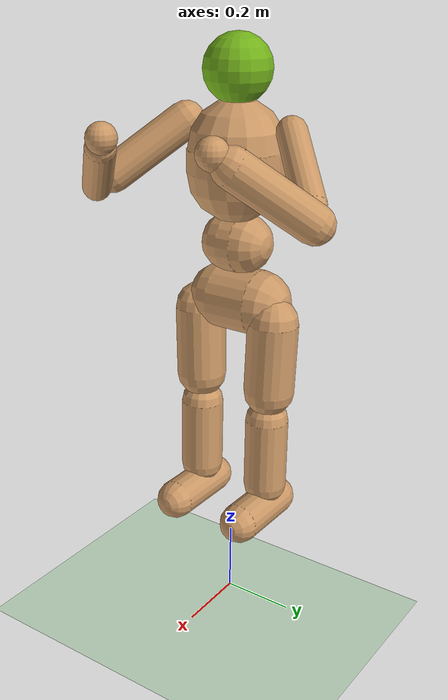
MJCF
<mujoco model="humanoid">
  <compiler angle="radian"/>

  <option timestep="0.003" integrator="RK4" solver="PGS" iterations="50"/>

  <size nkey="5" nuser_geom="1"/>

  <visual>
    <global offwidth="480"/>
    <map fogend="5"/>
  </visual>

  <default>
    <joint limited="true" armature="1" damping="1"/>
    <geom condim="1" margin="0.001" material="geom" rgba="0.8 0.6 0.4 1"/>
    <general ctrllimited="true" ctrlrange="-0.4 0.4"/>
  </default>

  <asset>
    <texture type="skybox" colorspace="auto" builtin="gradient" rgb1="0.4 0.5 0.6" rgb2="0 0 0" width="100" height="600"/>
    <texture type="cube" colorspace="auto" name="texgeom" builtin="flat" mark="cross" rgb1="0.8 0.6 0.4" rgb2="0.8 0.6 0.4" markrgb="1 1 1" width="127" height="762"/>
    <texture type="2d" colorspace="auto" name="texplane" builtin="checker" rgb1="0 0 0" rgb2="0.8 0.8 0.8" width="100" height="100"/>
    <material name="MatPlane" texture="texplane" texrepeat="60 60" specular="1" shininess="1" reflectance="0.5"/>
    <material name="geom" texture="texgeom" texuniform="true"/>
  </asset>

  <worldbody>
    <geom name="floor" size="20 20 0.125" type="plane" condim="3" friction="1 0.1 0.1" material="MatPlane" rgba="0.8 0.9 0.8 1"/>
    <light pos="0 0 1.3" dir="0 0 -1" type="directional" cutoff="100" exponent="1" diffuse="1 1 1" specular="0.1 0.1 0.1"/>
    <body name="torso" pos="0 0 1.35">
      <joint name="root" type="free" armature="0" damping="0"/>
      <geom name="torso1" type="capsule" size="0.13 0.03" pos="0 0 -0.04" density="900"/>
      <geom name="head" size="0.09" pos="0 0 0.19" user="258" rgba="0.45 0.7 0.1 1.0"/>

      <camera name="track" pos="0 -4 0" quat="0.707107 0.707107 0 0" mode="trackcom"/>
      <body name="lwaist" pos="-0.01 0 -0.26" quat="0.999998 0 -0.002 0">
        <joint name="abdomen_z" pos="0 0 0.065" axis="0 0 1" stiffness="20" range="-0.785398 0.785398" armature="0.02" damping="5"/>
        <joint name="abdomen_y" pos="0 0 0.065" axis="0 1 0" stiffness="12" range="-1.309 0.523599" armature="0.02" damping="65"/>
        <geom name="lwaist" size="0.08 0.02" quat="0.707107 0.707107 0 0" type="capsule"/>
        <body name="pelvis" pos="0 0 -0.165" quat="0.999998 0 -0.002 0">
          <joint name="abdomen_x" pos="0 0 0.1" axis="1 0 0" stiffness="10" range="-0.610865 0.610865" armature="0.02" damping="25"/>
          <geom name="butt" size="0.09 0.06" pos="-0.02 0 0" quat="0.707107 0.707107 0 0" type="capsule"/>
          <body name="right_thigh" pos="0 -0.12 -0.04">
            <joint name="right_hip_x" pos="0 0 0" axis="1 0 0" stiffness="10" range="-0.436332 0.0872665" armature="0.01" damping="5"/>
            <joint name="right_hip_z" pos="0 0 0" axis="0 0 1" stiffness="10" range="-1.0472 0.610865" armature="0.01" damping="5"/>
            <joint name="right_hip_y" pos="0 0 0" axis="0 1 0" stiffness="20" range="-1.91986 0.349066" armature="0.008" damping="5"/>
            <geom name="right_thigh1" size="0.07 0.1" pos="0 0.004 -0.1" quat="0.999892 0.0147011 0 0" type="capsule" density="1200"/>
            <body name="right_shin" pos="0 0.01 -0.31">
              <joint name="right_knee" pos="0 0 0.02" axis="0 -1 0" stiffness="4" range="-2.79253 -0.0349066" armature="0.006"/>
              <geom name="right_shin1" size="0.06 0.1" pos="0 0 -0.08" type="capsule"/>
              <body name="right_foot" pos="0 0 -0.25">
                <geom name="right_foot" type="capsule" size="0.055 0.1" fromto="-0.06 0 0 0.13 0 0" friction="1.8 0.2 0.1" />
              </body>
            </body>
          </body>
          <body name="left_thigh" pos="0 0.12 -0.04">
            <joint name="left_hip_x" pos="0 0 0" axis="-1 0 0" stiffness="10" range="-0.436332 0.0872665" armature="0.01" damping="5"/>
            <joint name="left_hip_z" pos="0 0 0" axis="0 0 -1" stiffness="10" range="-1.0472 0.610865" armature="0.01" damping="5"/>
            <joint name="left_hip_y" pos="0 0 0" axis="0 1 0" stiffness="20" range="-1.91986 0.349066" armature="0.01" damping="5"/>
            <geom name="left_thigh1" size="0.07 0.1" pos="0 -0.004 -0.1" quat="0.999892 -0.0147011 0 0" type="capsule" density="1200"/>
            <body name="left_shin" pos="0 -0.01 -0.31">
              <joint name="left_knee" pos="0 0 0.02" axis="0 -1 0" stiffness="4" range="-2.79253 -0.0349066" armature="0.006"/>
              <geom name="left_shin1" size="0.06 0.1" pos="0 0 -0.08" type="capsule"/>
              <body name="left_foot" pos="0 0 -0.25">
                <geom name="left_foot" type="capsule" size="0.055 0.1" fromto="-0.06 0 0 0.13 0 0" friction="1.8 0.2 0.1"/>
              </body>
            </body>
          </body>
        </body>
      </body>
      <body name="right_upper_arm" pos="0 -0.16 0.05">
        <joint name="right_shoulder1" pos="0 0 0" axis="0.816497 0.408248 0.408248" stiffness="2" range="-1.48353 1.0472" armature="0.0068"/>
        <joint name="right_shoulder2" pos="0 0 0" axis="0 -0.707107 0.707107" stiffness="2" range="-1.48353 1.0472" armature="0.0051"/>
        <geom name="right_uarm1" size="0.05 0.12" pos="0.07 -0.07 -0.07" quat="0.888074 -0.325058 -0.325058 0" type="capsule"/>
        <body name="right_lower_arm" pos="0.17 -0.17 -0.17">
          <joint name="right_elbow" pos="0 0 0" axis="0 -0.707107 0.707107" range="-1.5708 0.872665" armature="0.0028"/>
          <geom name="right_larm" size="0.04 0.12" pos="0.07 0.07 0.07" quat="0.459701 0.627963 -0.627963 0" type="capsule"/>
          <body name="right_h" pos="0.17 0.17 0.17">
            <geom name="right_hand" size="0.04" />
          </body>
        </body>
      </body>
      <body name="left_upper_arm" pos="0 0.16 0.05">
        <joint name="left_shoulder1" pos="0 0 0" axis="0.816497 -0.408248 0.408248" stiffness="2" range="-1.0472 1.48353" armature="0.0068"/>
        <joint name="left_shoulder2" pos="0 0 0" axis="0 0.707107 0.707107" stiffness="2" range="-1.0472 1.48353" armature="0.0051"/>
        <geom name="left_uarm1" size="0.04 0.12" pos="0.07 0.07 -0.07" quat="0.888074 0.325058 -0.325058 0" type="capsule"/>
        <body name="left_lower_arm" pos="0.17 0.17 -0.17">
          <joint name="left_elbow" pos="0 0 0" axis="0 -0.707107 -0.707107" range="-1.5708 0.872665" armature="0.0028"/>
          <geom name="left_larm" size="0.05 0.12" pos="0.07 -0.07 0.07" quat="0.459701 -0.627963 -0.627963 0" type="capsule"/>
          <body name="left_h" pos="0.17 -0.17 0.17">
            <geom name="left_hand" size="0.04" />
          </body>
        </body>
      </body>
    </body>
  </worldbody>

  <tendon>
    <fixed name="left_hipknee">
      <joint joint="left_hip_y" coef="-1"/>
      <joint joint="left_knee" coef="1"/>
    </fixed>
    <fixed name="right_hipknee">
      <joint joint="right_hip_y" coef="-1"/>
      <joint joint="right_knee" coef="1"/>
    </fixed>
  </tendon>

  <actuator>
    <general name="abdomen_y" joint="abdomen_y" gear="80 0 0 0 0 0"/>
    <general name="abdomen_z" joint="abdomen_z" gear="50 0 0 0 0 0"/>
    <general name="abdomen_x" joint="abdomen_x" gear="80 0 0 0 0 0"/>
    <general name="right_hip_x" joint="right_hip_x" gear="100 0 0 0 0 0"/>
    <general name="right_hip_z" joint="right_hip_z" gear="100 0 0 0 0 0"/>
    <general name="right_hip_y" joint="right_hip_y" gear="150 0 0 0 0 0"/>
    <general name="right_knee" joint="right_knee" gear="100 0 0 0 0 0"/>
    <general name="left_hip_x" joint="left_hip_x" gear="100 0 0 0 0 0"/>
    <general name="left_hip_z" joint="left_hip_z" gear="100 0 0 0 0 0"/>
    <general name="left_hip_y" joint="left_hip_y" gear="150 0 0 0 0 0"/>
    <general name="left_knee" joint="left_knee" gear="100 0 0 0 0 0"/>
    <general name="right_shoulder1" joint="right_shoulder1" gear="25 0 0 0 0 0"/>
    <general name="right_shoulder2" joint="right_shoulder2" gear="25 0 0 0 0 0"/>
    <general name="right_elbow" joint="right_elbow" gear="25 0 0 0 0 0"/>
    <general name="left_shoulder1" joint="left_shoulder1" gear="25 0 0 0 0 0"/>
    <general name="left_shoulder2" joint="left_shoulder2" gear="25 0 0 0 0 0"/>
    <general name="left_elbow" joint="left_elbow" gear="25 0 0 0 0 0"/>
  </actuator>
</mujoco>
